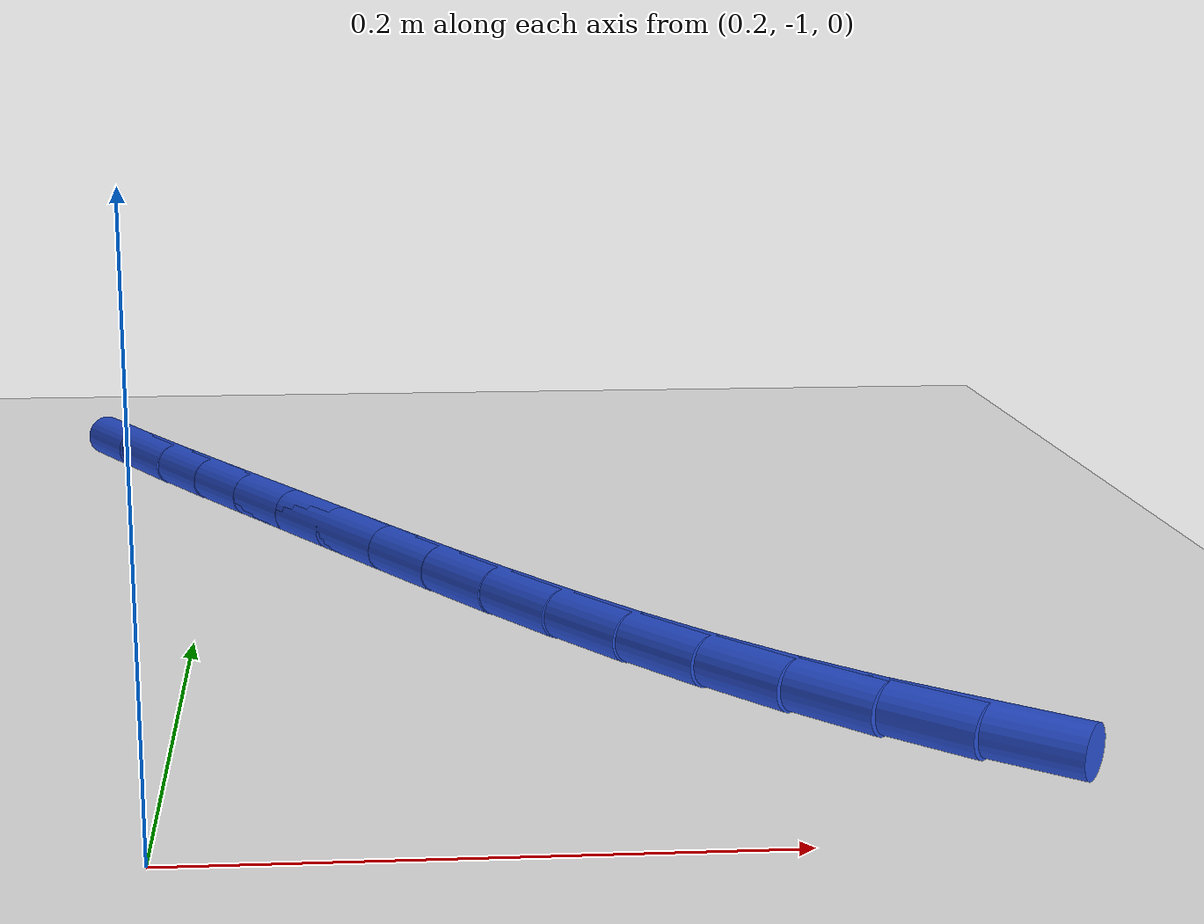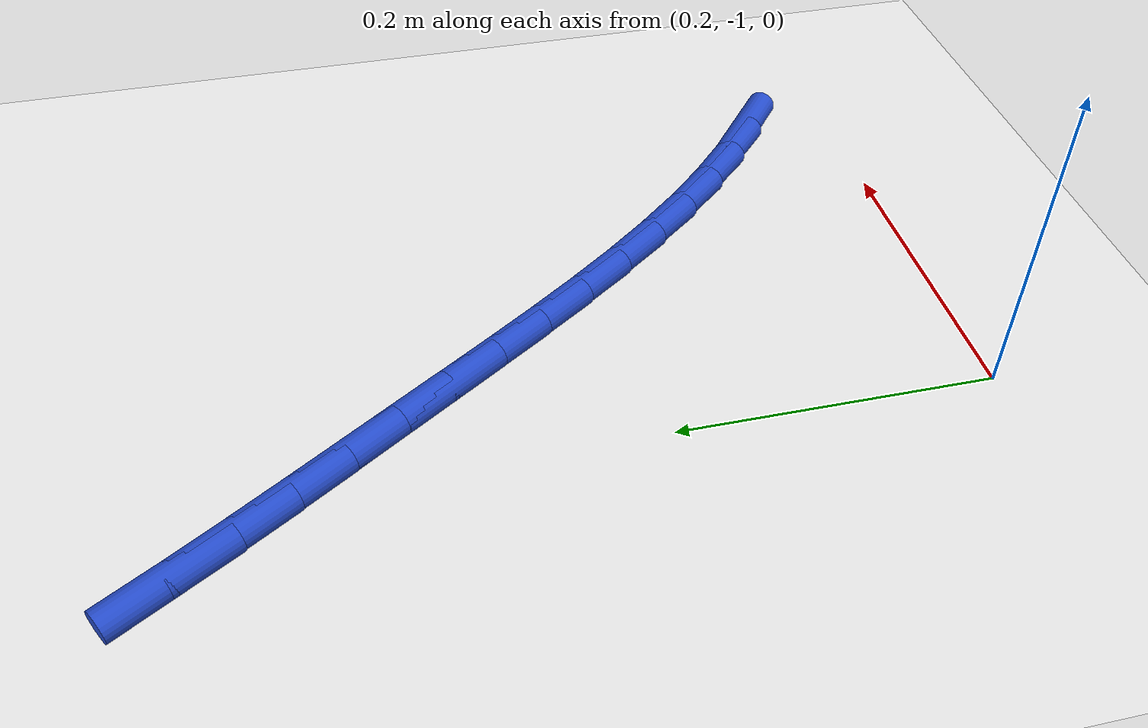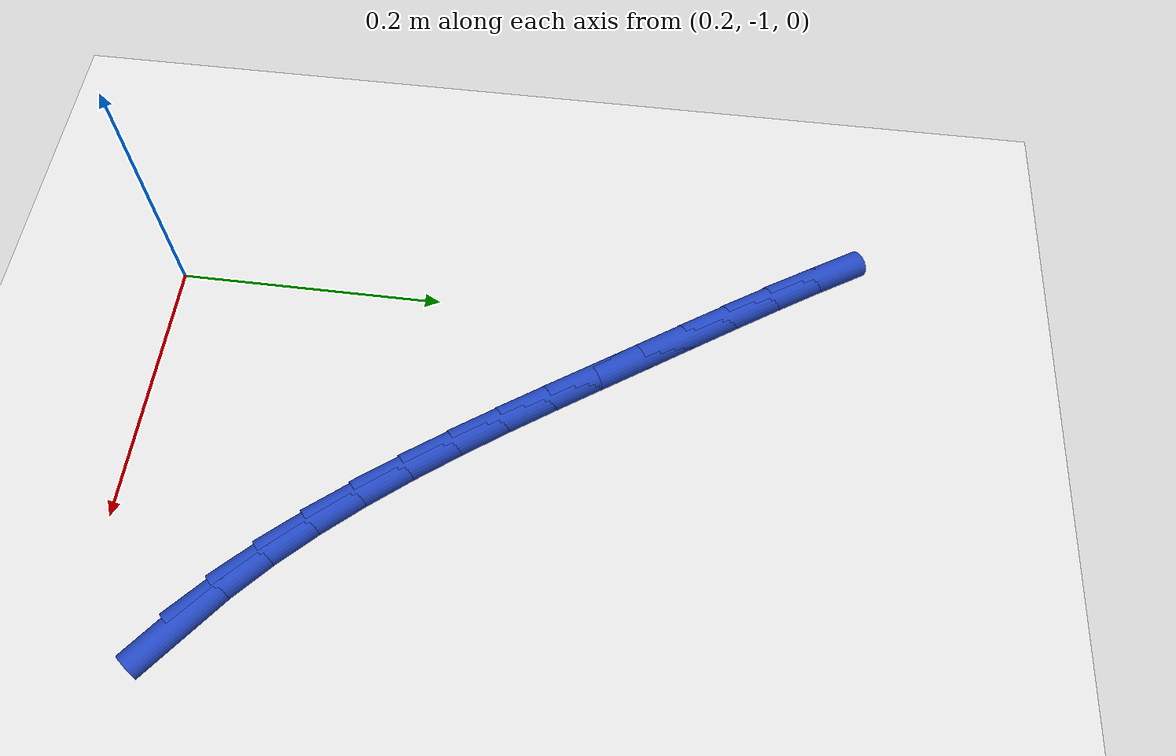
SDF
<sdf version="1.6">
 <world name="default">
  <model name="ground_plane">
   <static>1</static>
   <link name="link">
    <collision name="collision">
     <geometry><plane><normal>0 0 1</normal><size>100 100</size></plane></geometry>
     <surface><friction><ode><mu>100</mu><mu2>50</mu2></ode></friction></surface>
    </collision>
    <visual name="visual">
     <cast_shadows>0</cast_shadows>
     <geometry><plane><normal>0 0 1</normal><size>100 100</size></plane></geometry>
     <material>
      <script><uri>file://media/materials/scripts/gazebo.material</uri><name>Gazebo/WhiteGlow</name></script>
     </material>
    </visual>
   </link>
  </model>
  <model name="line">
   <link name="link_151">
    <pose>0.470382165002515 -0.9304977007308995 0.01 0 1.57 -0.6718434871784279</pose>
    <collision name="collision">
     <geometry><cylinder><radius>0.01</radius><length>0.08</length></cylinder></geometry>
    </collision>
    <visual name="visual">
     <material>
      <script><name>Gazebo/Blue</name><uri>file://media/materials/scripts/gazebo.material</uri></script>
     </material>
     <geometry><cylinder><radius>0.01</radius><length>0.08</length></cylinder></geometry>
    </visual>
   </link>
   <link name="link_152">
    <pose>0.44282408555139324 -0.9085818859025453 0.01 0 1.57 -0.7435184254280935</pose>
    <collision name="collision">
     <geometry><cylinder><radius>0.01</radius><length>0.08</length></cylinder></geometry>
    </collision>
    <visual name="visual">
     <material>
      <script><name>Gazebo/Blue</name><uri>file://media/materials/scripts/gazebo.material</uri></script>
     </material>
     <geometry><cylinder><radius>0.01</radius><length>0.08</length></cylinder></geometry>
    </visual>
   </link>
   <link name="link_153">
    <pose>0.41646493905510573 -0.884343011018655 0.01 0 1.57 -0.8043531706240096</pose>
    <collision name="collision">
     <geometry><cylinder><radius>0.01</radius><length>0.08</length></cylinder></geometry>
    </collision>
    <visual name="visual">
     <material>
      <script><name>Gazebo/Blue</name><uri>file://media/materials/scripts/gazebo.material</uri></script>
     </material>
     <geometry><cylinder><radius>0.01</radius><length>0.08</length></cylinder></geometry>
    </visual>
   </link>
   <link name="link_154">
    <pose>0.39118436504167864 -0.8580854135777329 0.01 0 1.57 -0.8550751515949129</pose>
    <collision name="collision">
     <geometry><cylinder><radius>0.01</radius><length>0.08</length></cylinder></geometry>
    </collision>
    <visual name="visual">
     <material>
      <script><name>Gazebo/Blue</name><uri>file://media/materials/scripts/gazebo.material</uri></script>
     </material>
     <geometry><cylinder><radius>0.01</radius><length>0.08</length></cylinder></geometry>
    </visual>
   </link>
   <link name="link_155">
    <pose>0.3668620030391405 -0.8301134310782858 0.01 0 1.57 -0.8964937018036748</pose>
    <collision name="collision">
     <geometry><cylinder><radius>0.01</radius><length>0.08</length></cylinder></geometry>
    </collision>
    <visual name="visual">
     <material>
      <script><name>Gazebo/Blue</name><uri>file://media/materials/scripts/gazebo.material</uri></script>
     </material>
     <geometry><cylinder><radius>0.01</radius><length>0.08</length></cylinder></geometry>
    </visual>
   </link>
   <link name="link_156">
    <pose>0.3433774925755179 -0.8007314010188185 0.01 0 1.57 -0.9293721589497739</pose>
    <collision name="collision">
     <geometry><cylinder><radius>0.01</radius><length>0.08</length></cylinder></geometry>
    </collision>
    <visual name="visual">
     <material>
      <script><name>Gazebo/Blue</name><uri>file://media/materials/scripts/gazebo.material</uri></script>
     </material>
     <geometry><cylinder><radius>0.01</radius><length>0.08</length></cylinder></geometry>
    </visual>
   </link>
   <link name="link_157">
    <pose>0.32061047317883806 -0.7702436608978359 0.01 0 1.57 -0.9543553818171374</pose>
    <collision name="collision">
     <geometry><cylinder><radius>0.01</radius><length>0.08</length></cylinder></geometry>
    </collision>
    <visual name="visual">
     <material>
      <script><name>Gazebo/Blue</name><uri>file://media/materials/scripts/gazebo.material</uri></script>
     </material>
     <geometry><cylinder><radius>0.01</radius><length>0.08</length></cylinder></geometry>
    </visual>
   </link>
   <link name="link_158">
    <pose>0.29844058437712795 -0.7389545482138438 0.01 0 1.57 -0.9719320363966963</pose>
    <collision name="collision">
     <geometry><cylinder><radius>0.01</radius><length>0.08</length></cylinder></geometry>
    </collision>
    <visual name="visual">
     <material>
      <script><name>Gazebo/Blue</name><uri>file://media/materials/scripts/gazebo.material</uri></script>
     </material>
     <geometry><cylinder><radius>0.01</radius><length>0.08</length></cylinder></geometry>
    </visual>
   </link>
   <link name="link_159">
    <pose>0.27674746569841463 -0.7071684004653465 0.01 0 1.57 -0.9824154210398689</pose>
    <collision name="collision">
     <geometry><cylinder><radius>0.01</radius><length>0.08</length></cylinder></geometry>
    </collision>
    <visual name="visual">
     <material>
      <script><name>Gazebo/Blue</name><uri>file://media/materials/scripts/gazebo.material</uri></script>
     </material>
     <geometry><cylinder><radius>0.01</radius><length>0.08</length></cylinder></geometry>
    </visual>
   </link>
   <link name="link_160">
    <pose>0.25541075667072594 -0.675189555150851 0.01 0 1.57 -0.985931753623843</pose>
    <collision name="collision">
     <geometry><cylinder><radius>0.01</radius><length>0.08</length></cylinder></geometry>
    </collision>
    <visual name="visual">
     <material>
      <script><name>Gazebo/Blue</name><uri>file://media/materials/scripts/gazebo.material</uri></script>
     </material>
     <geometry><cylinder><radius>0.01</radius><length>0.08</length></cylinder></geometry>
    </visual>
   </link>
   <link name="link_161">
    <pose>0.23431009682208861 -0.6433223497688615 0.01 0 1.57 -0.9843485923249181</pose>
    <collision name="collision">
     <geometry><cylinder><radius>0.01</radius><length>0.08</length></cylinder></geometry>
    </collision>
    <visual name="visual">
     <material>
      <script><name>Gazebo/Blue</name><uri>file://media/materials/scripts/gazebo.material</uri></script>
     </material>
     <geometry><cylinder><radius>0.01</radius><length>0.08</length></cylinder></geometry>
    </visual>
   </link>
   <link name="link_162">
    <pose>0.21336724987288946 -0.6118020008506875 0.01 0 1.57 -0.9857564111693364</pose>
    <collision name="collision">
     <geometry><cylinder><radius>0.01</radius><length>0.08</length></cylinder></geometry>
    </collision>
    <visual name="visual">
     <material>
      <script><name>Gazebo/Blue</name><uri>file://media/materials/scripts/gazebo.material</uri></script>
     </material>
     <geometry><cylinder><radius>0.01</radius><length>0.08</length></cylinder></geometry>
    </visual>
   </link>
   <link name="link_163">
    <pose>0.19268122242761201 -0.5805728896880469 0.01 0 1.57 -0.9924301323413796</pose>
    <collision name="collision">
     <geometry><cylinder><radius>0.01</radius><length>0.08</length></cylinder></geometry>
    </collision>
    <visual name="visual">
     <material>
      <script><name>Gazebo/Blue</name><uri>file://media/materials/scripts/gazebo.material</uri></script>
     </material>
     <geometry><cylinder><radius>0.01</radius><length>0.08</length></cylinder></geometry>
    </visual>
   </link>
   <link name="link_164">
    <pose>0.17239763065262126 -0.5495029166286359 0.01 0 1.57 -1.004504137005365</pose>
    <collision name="collision">
     <geometry><cylinder><radius>0.01</radius><length>0.08</length></cylinder></geometry>
    </collision>
    <visual name="visual">
     <material>
      <script><name>Gazebo/Blue</name><uri>file://media/materials/scripts/gazebo.material</uri></script>
     </material>
     <geometry><cylinder><radius>0.01</radius><length>0.08</length></cylinder></geometry>
    </visual>
   </link>
   <link name="link_165">
    <pose>0.1526620909269384 -0.5184599816712051 0.01 0 1.57 -1.0220836807090585</pose>
    <collision name="collision">
     <geometry><cylinder><radius>0.01</radius><length>0.08</length></cylinder></geometry>
    </collision>
    <visual name="visual">
     <material>
      <script><name>Gazebo/Blue</name><uri>file://media/materials/scripts/gazebo.material</uri></script>
     </material>
     <geometry><cylinder><radius>0.01</radius><length>0.08</length></cylinder></geometry>
    </visual>
   </link>
  </model>
 </world>
</sdf>
